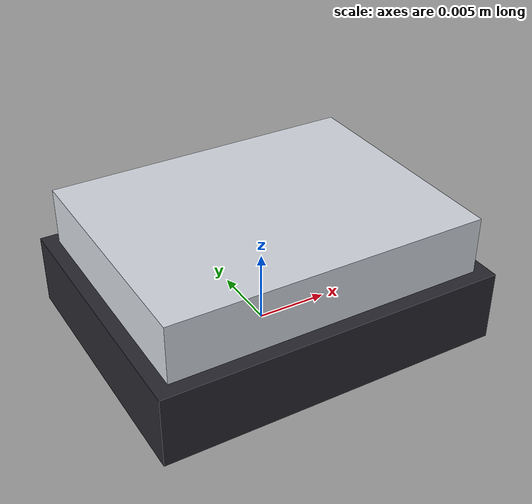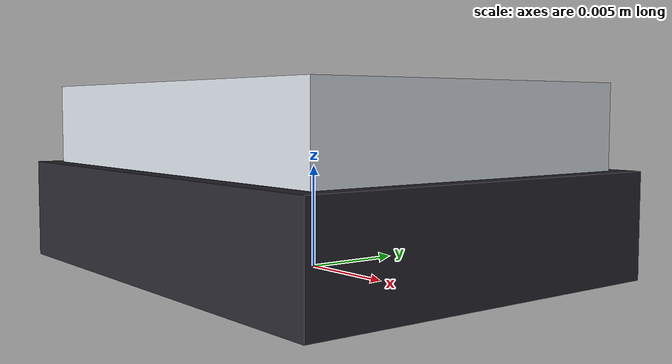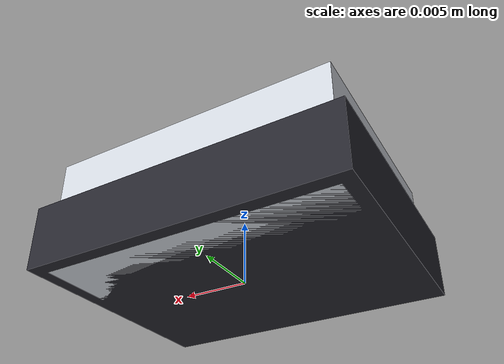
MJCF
<mujoco model="Switch_32">
  <asset>
    <material name="Switch_32_bezel" rgba="0.15 0.15 0.18 1"/>
    <material name="Switch_32_button" rgba="0.82 0.84 0.87 1"/>
  </asset>
  <worldbody>
    <body name="Switch_32">
      <geom name="Switch_32_bezel" type="box"
            pos="0 0 0.0025" size="0.012 0.0095 0.0025"
            material="Switch_32_bezel"/>
      <geom name="Switch_32_button" type="box"
            pos="0 0 0.0045" size="0.011 0.0085 0.0045"
            material="Switch_32_button"/>
    </body>
  </worldbody>
</mujoco>
